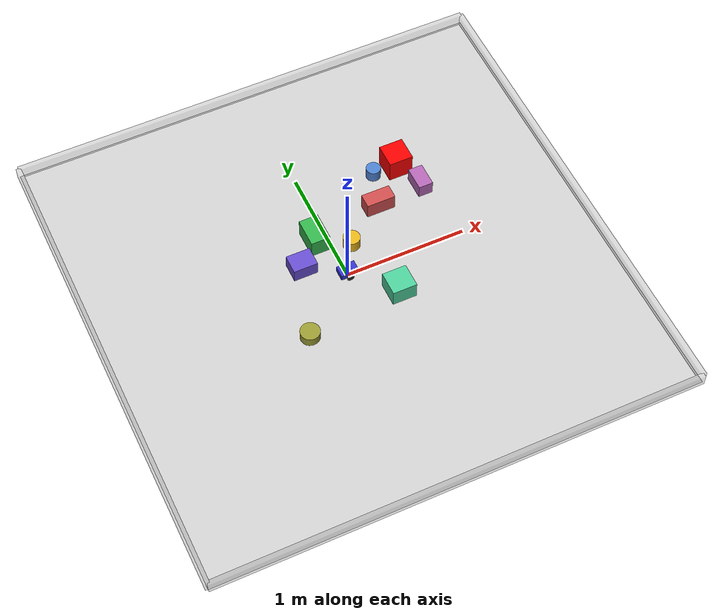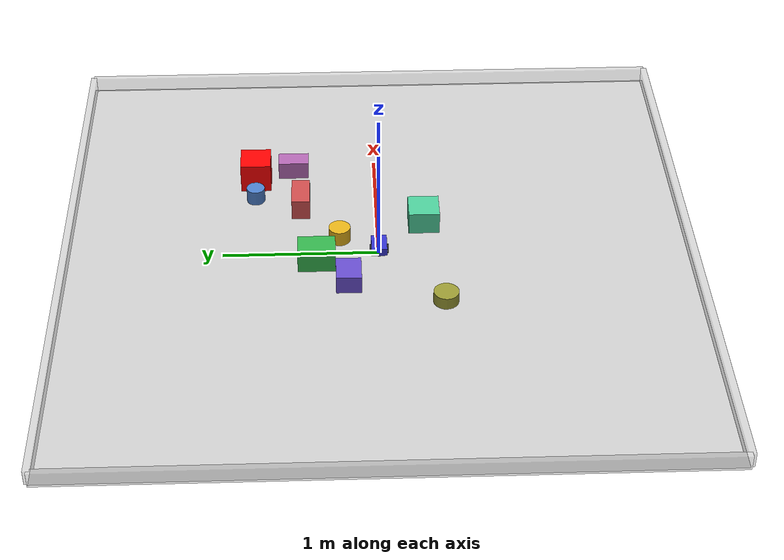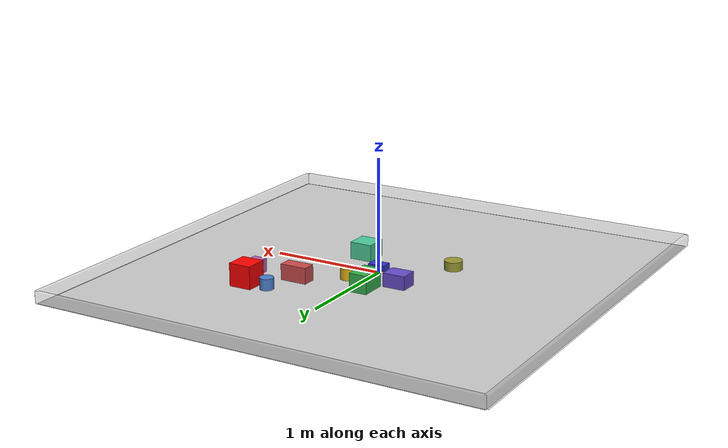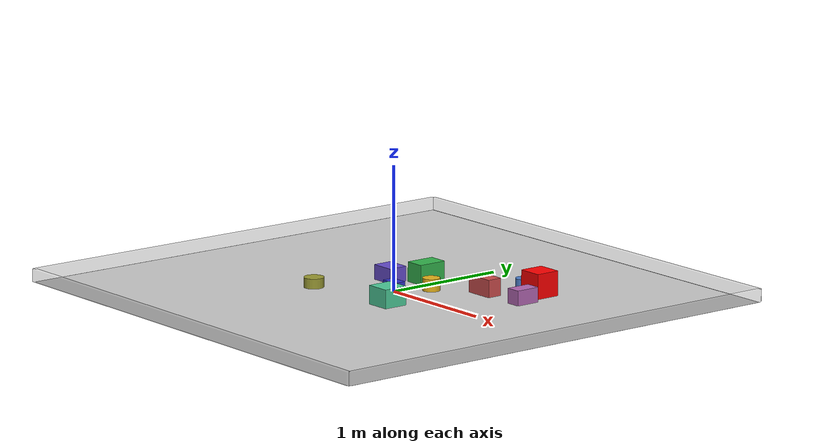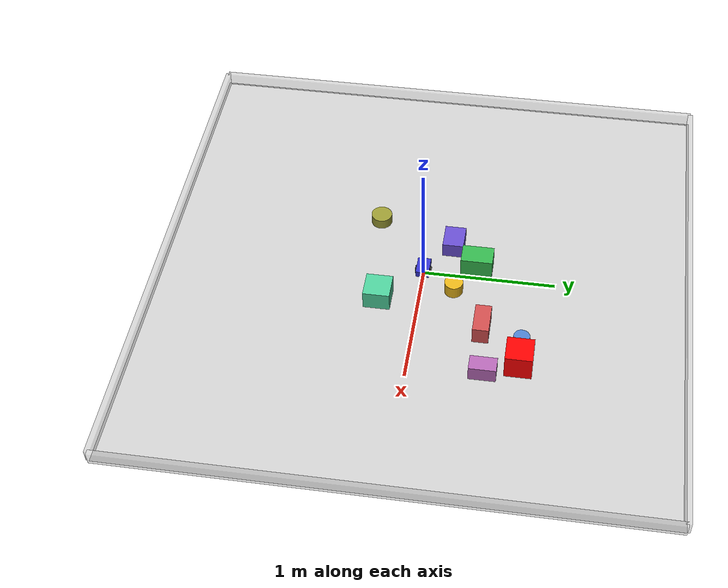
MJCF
<mujoco model="RoClaw_DenseObstacles">
  <compiler angle="radian"/>

  <option timestep="0.002" gravity="0 0 -9.81" integrator="implicit"/>

  <default>
    <geom condim="3" friction="1.0 0.005 0.0001"/>
    <joint damping="0.01"/>
  </default>

  <asset>
    <texture name="grid" type="2d" builtin="checker"
             rgb1="0.9 0.9 0.9" rgb2="0.7 0.7 0.7"
             width="512" height="512"/>
    <material name="grid_mat" texture="grid" texrepeat="8 8" texuniform="true"/>
    <material name="chassis_mat" rgba="0.2 0.2 0.8 1"/>
    <material name="wheel_mat" rgba="0.15 0.15 0.15 1"/>
    <material name="caster_mat" rgba="0.6 0.6 0.6 1"/>
    <material name="red_cube_mat" rgba="1.0 0.0 0.0 1"/>
  </asset>

  <visual>
    <headlight ambient="0.3 0.3 0.3" diffuse="0.5 0.5 0.5"/>
  </visual>

  <worldbody>
    <light name="overhead" pos="0 0 1.5" dir="0 0 -1"
           diffuse="0.8 0.8 0.8" specular="0.2 0.2 0.2" directional="true"/>

    <!-- Ground plane -->
    <geom name="floor" type="plane" size="2 2 0.01" material="grid_mat"/>

    <!-- Arena walls -->
    <geom name="wall_north" type="box" pos="0 2 0.05" size="2 0.02 0.05" rgba="0.5 0.5 0.5 0.3"/>
    <geom name="wall_south" type="box" pos="0 -2 0.05" size="2 0.02 0.05" rgba="0.5 0.5 0.5 0.3"/>
    <geom name="wall_east" type="box" pos="2 0 0.05" size="0.02 2 0.05" rgba="0.5 0.5 0.5 0.3"/>
    <geom name="wall_west" type="box" pos="-2 0 0.05" size="0.02 2 0.05" rgba="0.5 0.5 0.5 0.3"/>

    <!-- Obstacle cluster 1: left-center, blocks direct path -->
    <body name="obstacle1" pos="-0.3 0.2 0.06">
      <geom type="box" size="0.1 0.08 0.06" rgba="0.4 0.3 0.8 1"/>
    </body>
    <body name="obstacle2" pos="-0.1 0.4 0.08">
      <geom type="box" size="0.08 0.12 0.08" rgba="0.2 0.7 0.3 1"/>
    </body>
    <body name="obstacle3" pos="0.15 0.25 0.05">
      <geom type="cylinder" size="0.07 0.05" rgba="0.9 0.7 0.1 1"/>
    </body>

    <!-- Obstacle cluster 2: right side, guards the target -->
    <body name="obstacle4" pos="0.5 0.5 0.07">
      <geom type="box" size="0.12 0.06 0.07" rgba="0.8 0.3 0.3 1"/>
    </body>
    <body name="obstacle5" pos="0.6 0.8 0.05">
      <geom type="cylinder" size="0.06 0.05" rgba="0.3 0.5 0.8 1"/>
    </body>
    <body name="obstacle6" pos="0.9 0.55 0.06">
      <geom type="box" size="0.06 0.1 0.06" rgba="0.7 0.4 0.7 1"/>
    </body>

    <!-- Scattered obstacles: create narrow passages -->
    <body name="obstacle7" pos="-0.5 -0.4 0.04">
      <geom type="cylinder" size="0.08 0.04" rgba="0.6 0.6 0.2 1"/>
    </body>
    <body name="obstacle8" pos="0.3 -0.3 0.075">
      <geom type="box" size="0.1 0.1 0.075" rgba="0.3 0.8 0.6 1"/>
    </body>

    <!-- Target: red cube behind obstacle cluster 2 -->
    <body name="red_cube" pos="0.8 0.8 0.1">
      <geom type="box" size="0.1 0.1 0.1" material="red_cube_mat"/>
    </body>

    <!-- External overhead camera -->
    <camera name="external_cam" pos="0 0 0.8" xyaxes="1 0 0 0 1 0"
            fovy="90" resolution="640 480"/>

    <!-- ============== RoClaw Robot ============== -->
    <body name="chassis" pos="0 0 0.06">
      <freejoint name="root"/>

      <geom name="chassis_geom" type="box"
            size="0.075 0.05 0.025"
            mass="0.3"
            material="chassis_mat"/>

      <camera name="eyes" pos="0.075 0 0.02" xyaxes="0 -1 0 0 0 1"
              fovy="65" resolution="320 240"/>

      <!-- Left wheel -->
      <body name="left_wheel" pos="0 0.05 -0.025">
        <joint name="left_wheel_joint" type="hinge" axis="0 1 0" damping="0.005"/>
        <geom name="left_wheel_geom" type="cylinder"
              size="0.03 0.01"
              euler="1.5708 0 0"
              mass="0.05"
              material="wheel_mat"
              friction="1.5 0.005 0.0001"/>
      </body>

      <!-- Right wheel -->
      <body name="right_wheel" pos="0 -0.05 -0.025">
        <joint name="right_wheel_joint" type="hinge" axis="0 1 0" damping="0.005"/>
        <geom name="right_wheel_geom" type="cylinder"
              size="0.03 0.01"
              euler="1.5708 0 0"
              mass="0.05"
              material="wheel_mat"
              friction="1.5 0.005 0.0001"/>
      </body>

      <!-- Rear caster ball -->
      <body name="caster" pos="-0.06 0 -0.025">
        <joint name="caster_x" type="hinge" axis="1 0 0" damping="0.001"/>
        <joint name="caster_y" type="hinge" axis="0 1 0" damping="0.001"/>
        <geom name="caster_geom" type="sphere"
              size="0.015"
              mass="0.02"
              material="caster_mat"
              friction="0.05 0.001 0.0001"/>
      </body>
    </body>
  </worldbody>

  <actuator>
    <velocity name="left_wheel" joint="left_wheel_joint"
              ctrlrange="-1.571 1.571" kv="1.0"/>
    <velocity name="right_wheel" joint="right_wheel_joint"
              ctrlrange="-1.571 1.571" kv="1.0"/>
  </actuator>
</mujoco>
